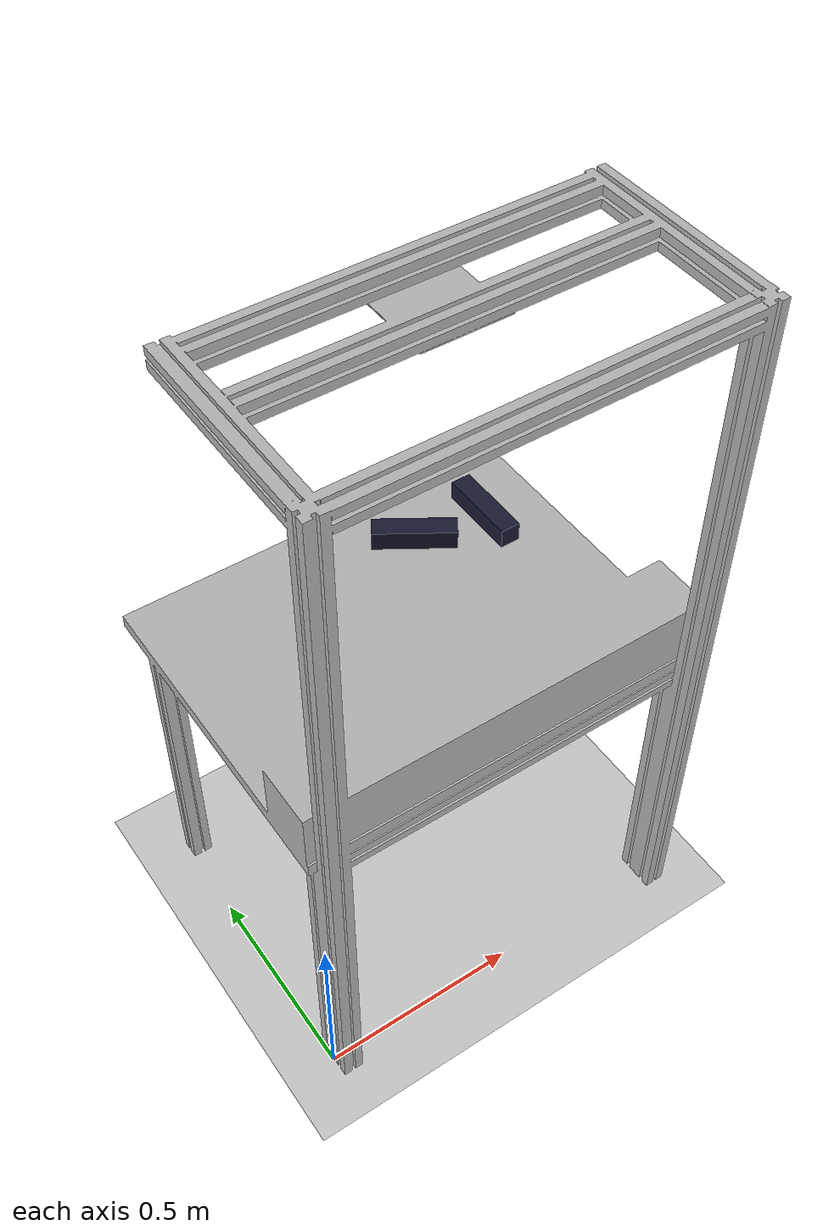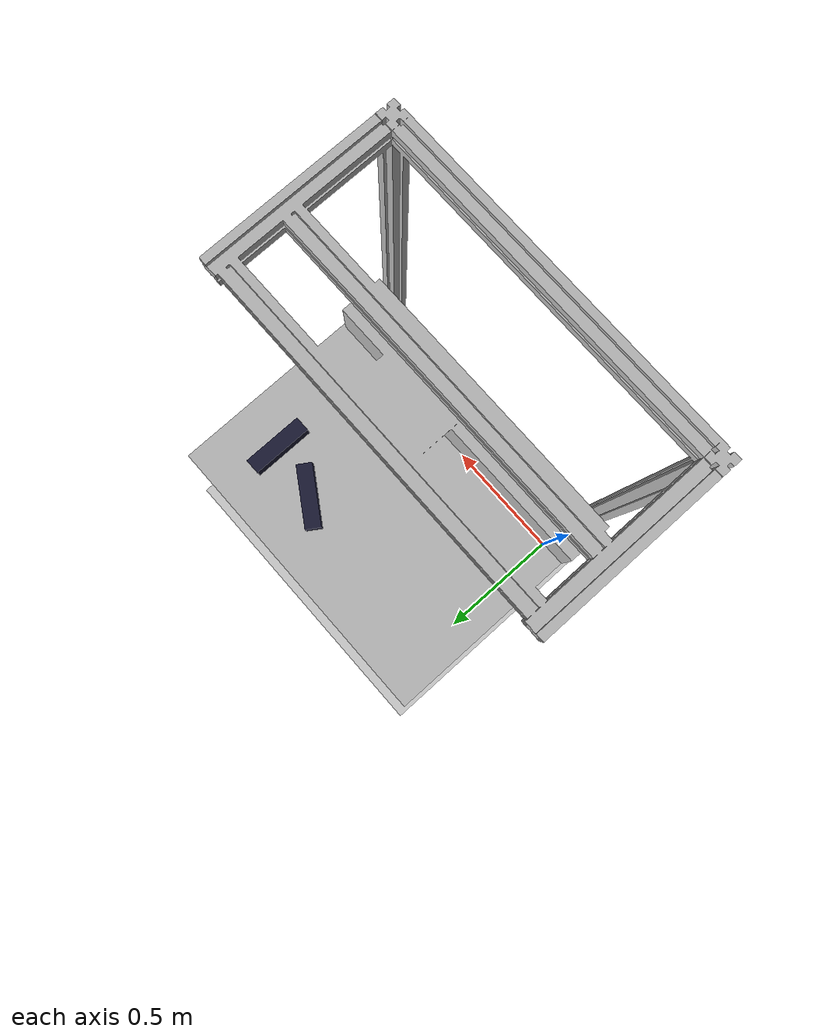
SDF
<?xml version="1.0" ?>
<sdf version="1.4">
  <world name="default">
    <physics type='ode'>
      <gravity>0 0 -9.81</gravity>
      <!-- max step size has to be a multiple of the desired task rate-->
      <max_step_size>0.001</max_step_size>
      <real_time_factor>1</real_time_factor>
    </physics>
    <!-- A global light source -->
    <include>
      <uri>model://sun</uri>
    </include>
    <!-- A ground plane -->
    <include>
      <uri>model://ground_plane</uri>
    </include>
    <include>
      <name>tavolo</name>
      <uri>model://tavolo</uri>
      <pose>0.0 0.0 0.0 0 0 0</pose>
    </include>

    <include>
      <name>brick1</name>
      <uri>model://brick</uri>
      <pose> 0.64 0.6 0.925   0 0 1.</pose>
    </include>

    <include>
      <name>brick2</name>
      <uri>model://brick</uri>
      <pose> 0.82 0.57 0.925   0 0 0</pose>
    </include>

    <gui>
    <camera name="gzclient_camera">
      <pose>1. 3.2 2.2 0. 0.4 -1.75</pose>
    </camera>
    </gui>

  </world>
</sdf>

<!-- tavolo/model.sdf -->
<sdf version="1.4">

<physics type="ode">

      <ode>

        <constraints>
          <contact_max_correcting_vel>0.1</contact_max_correcting_vel>
          <contact_surface_layer>0.0001</contact_surface_layer>
        </constraints>
      </ode>
	<max_contacts>10</max_contacts>
	</physics>

	<model name="tavolo">
	    <static>true</static>
		<link name="link">

		     <collision name="base">
			<pose>0.5 0.4 0.85 0 0 0</pose>
			<geometry>
			  <box>
			    <size>1 0.8 0.04</size>
			  </box>
			</geometry>

				<!-- see https://gazebosim.org/tutorials?tut=physics_params&cat=physics-->
				 <surface>
				  <bounce>
				    <restitution_coefficient>0.01</restitution_coefficient>
				    <threshold>5.0</threshold>
				  </bounce>
				  <friction>
				    <ode>
				      <mu>10</mu>
				      <mu2>10</mu2>
				    </ode>
				  </friction>
				  <contact>
				     <ode>
					<max_vel>0.1</max_vel>
					<min_depth>0.001</min_depth>
				        <kp>1000000.0</kp>
					<kd>1000.0</kd>
				      </ode>
			            </contact>
				</surface>

		     	</collision>

	     			<collision name="box">
				<pose>0.5 0.08 0.95 0 0 0</pose>
				<geometry>
				  <box>
				    <size>1 0.15 0.15</size>
				  </box>
				</geometry>

				 <surface>
				  <bounce>
				    <restitution_coefficient>0.01</restitution_coefficient>
				    <threshold>5.0</threshold>
				  </bounce>
				  <friction>
				    <ode>
				      <mu>10</mu>
				      <mu2>10</mu2>
				    </ode>
				  </friction>
				  <contact>
				     <ode>
					<max_vel>0.1</max_vel>
					<min_depth>0.001</min_depth>
				        <kp>1000000.0</kp>
					<kd>1000.0</kd>
				      </ode>
			            </contact>
				</surface>

			      </collision>

			   <collision name="back">
				<pose>0.5 -0.02 1.35 1.57 0 0</pose>
				<geometry>
				  <box>
				    <size>1 1.0 0.04</size>
				  </box>
				</geometry>

				 <surface>
				  <bounce>
				    <restitution_coefficient>0.01</restitution_coefficient>
				    <threshold>5.0</threshold>
				  </bounce>
				  <friction>
				    <ode>
				      <mu>10</mu>
				      <mu2>10</mu2>
				    </ode>
				  </friction>
				  <contact>
				     <ode>
					<max_vel>0.1</max_vel>
					<min_depth>0.001</min_depth>
				        <kp>1000000.0</kp>
					<kd>1000.0</kd>
				      </ode>
			            </contact>
				</surface>

			      </collision>

			<visual name="visual">
				<geometry>
					<mesh>
						<uri>model://tavolo/mesh/tavolo.stl</uri>
                                                <scale>0.001 0.001 0.001</scale>
					</mesh>
				</geometry>
			</visual>
		</link>
	</model>
</sdf>

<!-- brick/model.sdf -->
<sdf version="1.4">

<physics type="ode">

      <ode>

        <constraints>
          <contact_max_correcting_vel>0.1</contact_max_correcting_vel>
          <contact_surface_layer>0.0001</contact_surface_layer>
        </constraints>
      	</ode>
	<max_contacts>10</max_contacts>
	</physics>

	<model name="brick">

		<link name="link">

		   <inertial>
			<mass>1.0</mass>
			<inertia> <!-- inertias are tricky to compute -->
			  <!-- http://gazebosim.org/tutorials?tut=inertia&cat=build_robot -->
			  <ixx>0.083</ixx>       <!-- for a box: ixx = 0.083 * mass * (y*y + z*z) -->
			  <ixy>0.0</ixy>         <!-- for a box: ixy = 0 -->
			  <ixz>0.0</ixz>         <!-- for a box: ixz = 0 -->
			  <iyy>0.083</iyy>       <!-- for a box: iyy = 0.083 * mass * (x*x + z*z) -->
			  <iyz>0.0</iyz>         <!-- for a box: iyz = 0 -->
			  <izz>0.083</izz>       <!-- for a box: izz = 0.083 * mass * (x*x + y*y) -->
			</inertia>
		      </inertial>
		      <collision name="collision">
			<geometry>
			  <box>
			    <size>0.05 0.2 0.05</size>
			  </box>
			</geometry>
		      </collision>

		      <visual name="visual">

 			<material>
			  <ambient>0.1 0.1 0.1 1</ambient>
			  <diffuse>0.1 0.1 0.2 1</diffuse>
			  <specular>0 0 0 0</specular>
			  <emissive>0 0 0 1</emissive>
			</material>

			<geometry>
			  <box>
			    <size>0.05 0.2 0.05</size>
			  </box>
			</geometry>
		      </visual>

			<mu1>10</mu1>
			    <mu2>10</mu2>

			    <kp>10000.0</kp>
			    <kd>10.0</kd>
			    <fdir1>0 0 1</fdir1>
			    <minDepth>0.001</minDepth>
			    <maxVel>0.0</maxVel>
			    <maxContacts>2</maxContacts>
			    <material>Gazebo/RedBright</material>

		</link>
	</model>
</sdf>
